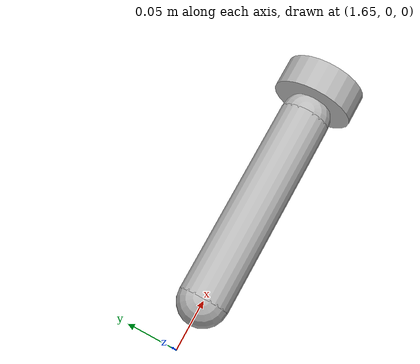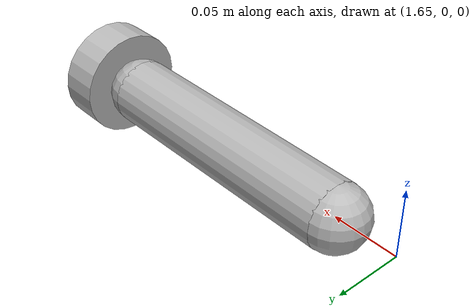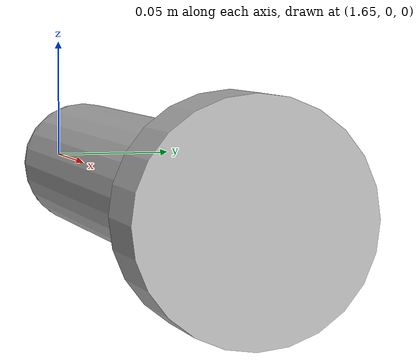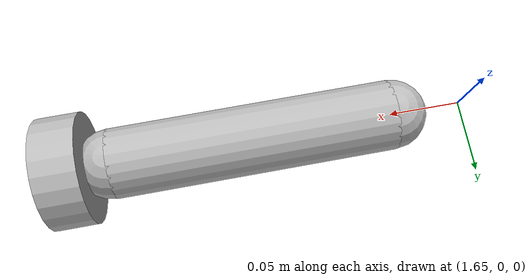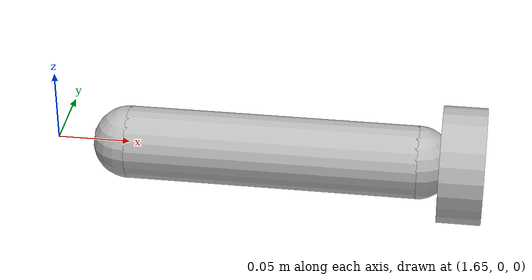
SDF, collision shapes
<sdf version="1.3">
    <model name="fire_hose_long">
        <link name="sphere_09">
            <gravity>false</gravity>
            <pose>1.700000 0.000000 0.000000 0.000000 -0.000000 0.000000</pose>
            <inertial>
                <pose>0.000000 0.000000 0.000000 0.000000 -0.000000 0.000000</pose>
                <mass>0.100000</mass>
                <inertia>
                    <ixx>0.010000</ixx>
                    <ixy>0.000000</ixy>
                    <ixz>0.000000</ixz>
                    <iyy>0.010000</iyy>
                    <iyz>0.000000</iyz>
                    <izz>0.010000</izz>
                </inertia>
            </inertial>
            <collision name="sphere_09_collision">
                <pose>0.000000 0.000000 0.000000 0.000000 -0.000000 0.000000</pose>
                <geometry>
                    <sphere>
                        <radius>0.025000</radius>
                    </sphere>
                </geometry>
            </collision>
            <visual name="sphere_09_vis">
                <pose>0.000000 0.000000 0.000000 0.000000 -0.000000 0.000000</pose>
                <geometry>
                    <sphere>
                        <radius>0.025000</radius>
                    </sphere>
                </geometry>
            </visual>
            <velocity_decay />
        </link>
        <link name="link_09">
            <gravity>false</gravity>
            <pose>1.700000 0.000000 0.000000 0.000000 -0.000000 0.000000</pose>
            <inertial>
                <pose>0.000000 0.000000 0.000000 0.000000 -0.000000 0.000000</pose>
                <mass>0.100000</mass>
                <inertia>
                    <ixx>0.010000</ixx>
                    <ixy>0.000000</ixy>
                    <ixz>0.000000</ixz>
                    <iyy>0.010000</iyy>
                    <iyz>0.000000</iyz>
                    <izz>0.010000</izz>
                </inertia>
            </inertial>
            <collision name="link_09_collision">
                <pose>0.100000 0.000000 0.000000 0.000000 1.570790 0.000000</pose>
                <geometry>
                    <cylinder>
                        <length>0.200000</length>
                        <radius>0.025000</radius>
                    </cylinder>
                </geometry>
            </collision>
            <visual name="link_09_vis">
                <pose>0.100000 0.000000 0.000000 0.000000 1.570790 0.000000</pose>
                <geometry>
                    <cylinder>
                        <length>0.200000</length>
                        <radius>0.025000</radius>
                    </cylinder>
                </geometry>
            </visual>
            <velocity_decay />
        </link>
        <joint name="joint_09_2" type="revolute">
            <child>link_09</child>
            <parent>sphere_09</parent>
            <axis>
                <xyz>0.000000 1.000000 0.000000</xyz>
                <limit>
                    <lower>-1.570800</lower>
                    <upper>1.570800</upper>
                </limit>
                <dynamics />
            </axis>
        </joint>
        <link name="sphere_10">
            <gravity>false</gravity>
            <pose>1.900000 0.000000 0.000000 0.000000 -0.000000 0.000000</pose>
            <inertial>
                <pose>0.000000 0.000000 0.000000 0.000000 -0.000000 0.000000</pose>
                <mass>0.100000</mass>
                <inertia>
                    <ixx>0.010000</ixx>
                    <ixy>0.000000</ixy>
                    <ixz>0.000000</ixz>
                    <iyy>0.010000</iyy>
                    <iyz>0.000000</iyz>
                    <izz>0.010000</izz>
                </inertia>
            </inertial>
            <collision name="sphere_10_collision">
                <pose>0.000000 0.000000 0.000000 0.000000 -0.000000 0.000000</pose>
                <geometry>
                    <sphere>
                        <radius>0.025000</radius>
                    </sphere>
                </geometry>
            </collision>
            <visual name="sphere_10_vis">
                <pose>0.000000 0.000000 0.000000 0.000000 -0.000000 0.000000</pose>
                <geometry>
                    <sphere>
                        <radius>0.025000</radius>
                    </sphere>
                </geometry>
            </visual>
            <velocity_decay />
        </link>
        <joint name="joint_10_1" type="revolute">
            <child>sphere_10</child>
            <parent>link_09</parent>
            <axis>
                <xyz>0.000000 0.000000 1.000000</xyz>
                <limit>
                    <lower>-1.570800</lower>
                    <upper>1.570800</upper>
                </limit>
                <dynamics />
            </axis>
        </joint>
        <link name="coupling_base">
            <pose>1.900000 0.000000 0.000000 0.000000 -0.000000 0.000000</pose>
            <inertial>
                <pose>0.000000 0.000000 0.000000 0.000000 -0.000000 0.000000</pose>
                <mass>0.100000</mass>
                <inertia>
                    <ixx>0.010000</ixx>
                    <ixy>0.000000</ixy>
                    <ixz>0.000000</ixz>
                    <iyy>0.010000</iyy>
                    <iyz>0.000000</iyz>
                    <izz>0.010000</izz>
                </inertia>
            </inertial>
            <velocity_decay />
        </link>
        <joint name="joint_20_2" type="revolute">
            <child>coupling_base</child>
            <parent>sphere_10</parent>
            <axis>
                <xyz>0.000000 1.000000 0.000000</xyz>
                <limit>
                    <lower>-1.570800</lower>
                    <upper>1.570800</upper>
                </limit>
                <dynamics />
            </axis>
        </joint>
        <link name="coupling">
            <pose>1.900000 0.000000 0.000000 0.000000 -0.000000 0.000000</pose>
            <inertial>
                <pose>0.000000 0.000000 0.000000 0.000000 -0.000000 0.000000</pose>
                <mass>0.100000</mass>
                <inertia>
                    <ixx>0.010000</ixx>
                    <ixy>0.000000</ixy>
                    <ixz>0.000000</ixz>
                    <iyy>0.010000</iyy>
                    <iyz>0.000000</iyz>
                    <izz>0.010000</izz>
                </inertia>
            </inertial>
            <visual name="coupling_mesh_visual">
                <pose>0.000000 0.000000 0.000000 0.000000 -0.000000 0.000000</pose>
                <geometry>
                    <mesh>
                        <scale>0.001000 0.001000 0.001000</scale>
                        <uri>model://../model_source/models/fire_hose_long/meshes/coupling.stl</uri>
                    </mesh>
                </geometry>
            </visual>
            <collision name="coupling_collision">
                <pose>0.030000 0.000000 0.000000 0.000000 1.570790 0.000000</pose>
                <geometry>
                    <cylinder>
                        <length>0.03</length>
                        <radius>0.04</radius>
                    </cylinder>
                </geometry>
            </collision>
            <velocity_decay>
                <linear>0.005</linear>
                <angular>0.005</angular>
            </velocity_decay>
        </link>
        <joint name="joint_20_3" type="revolute">
            <child>coupling</child>
            <parent>coupling_base</parent>
            <axis>
                <xyz>1.000000 0.000000 0.000000</xyz>
            </axis>
        </joint>
        <plugin name="fire_hose_long_plugin" filename="libDRCFirehosePlugin.so">
            <coupling_link>coupling</coupling_link>
            <spout_model>standpipe</spout_model>
            <spout_link>standpipe</spout_link>
            <thread_pitch>-1000</thread_pitch>
            <coupling_relative_pose>1.17038e-05 -0.125623 0.35 -0.0412152 -1.57078 1.61199</coupling_relative_pose>
        </plugin>
    </model>
</sdf>
